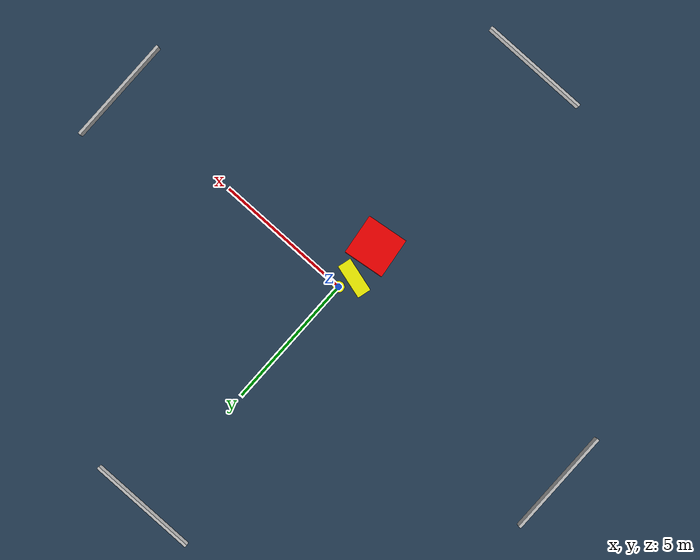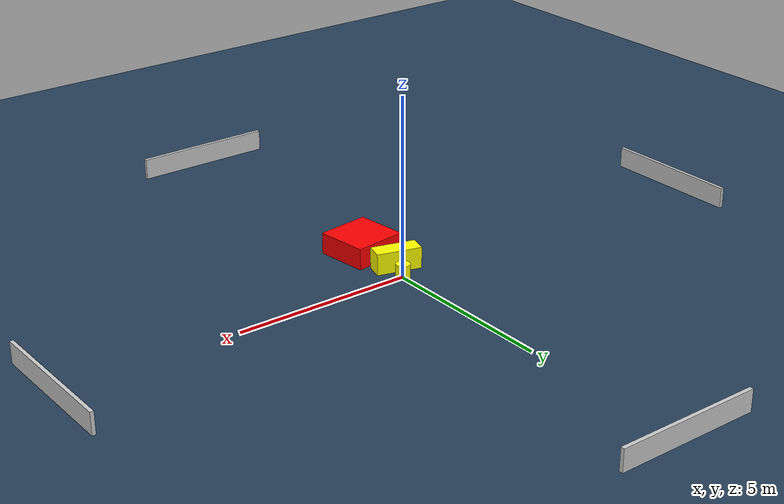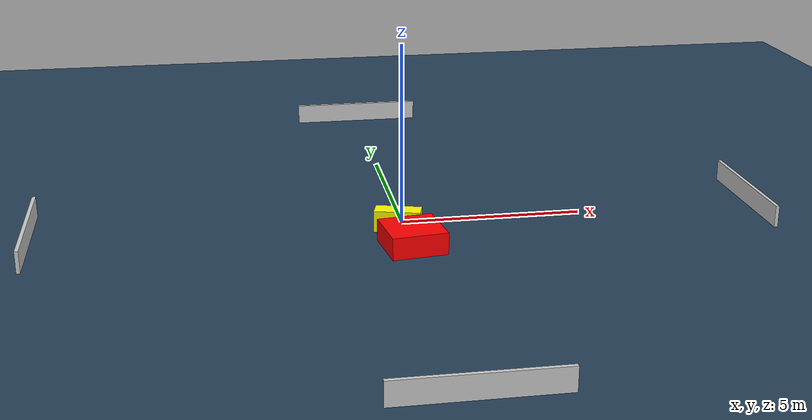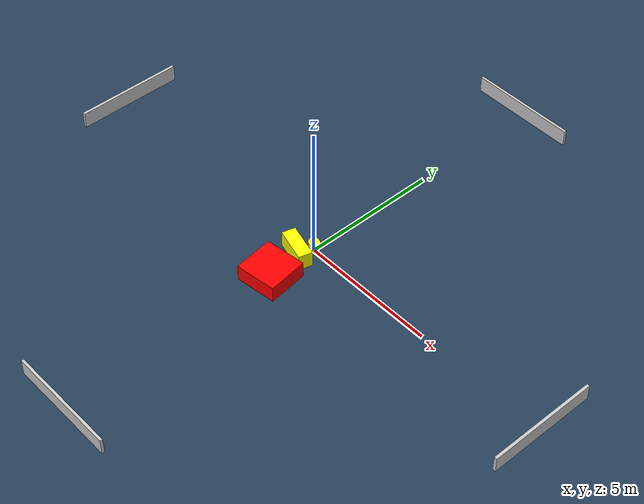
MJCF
<?xml version="1.0" ?>
<mujoco model="generated_environment">
  <option timestep="0.01" integrator="RK4" cone="elliptic"/>
  <default>
    <geom density="1"/>
  </default>
  <asset>
    <texture builtin="gradient" height="3072" name="skybox" rgb1="0.3 0.5 0.7" rgb2="0 0 0" type="skybox" width="512"/>
    <texture builtin="checker" height="300" name="groundplane" rgb1="0.2 0.3 0.4" rgb2="0.1 0.2 0.3" type="2d" width="300"/>
    <material name="groundplane" reflectance="0.2" texrepeat="5 5" texture="groundplane"/>
  </asset>
  <worldbody>
    <light dir="0 0 -1" directional="true" pos="0 0 1.5"/>
    <geom condim="3" friction="0.5 0.005 0.001" material="groundplane" name="floor" pos="0 0 0" size="0 0 0.05" type="plane"/>
    <body name="walls">
      <geom name="wall_1" condim="4" pos="-10.0 0.0 0.3" rgba="0.800000011920929 0.800000011920929 0.800000011920929 1.0" size="0.05 2.0 0.3" type="box"/>
      <geom name="wall_2" condim="4" pos="10.0 0.0 0.3" rgba="0.800000011920929 0.800000011920929 0.800000011920929 1.0" size="0.05 2.0 0.3" type="box"/>
      <geom name="wall_3" condim="4" pos="0.0 -10.0 0.3" rgba="0.800000011920929 0.800000011920929 0.800000011920929 1.0" size="2.0 0.05 0.3" type="box"/>
      <geom name="wall_4" condim="4" pos="0.0 10.0 0.3" rgba="0.800000011920929 0.800000011920929 0.800000011920929 1.0" size="2.0 0.05 0.3" type="box"/>
    </body>
    <body name="robot">
      <joint name="joint_x" type="slide" pos="0 0 0" axis="1 0 0"/>
      <joint name="joint_y" type="slide" pos="0 0 0" axis="0 1 0"/>
      <geom name="robot" type="cylinder" pos="0.0 0.0 0.2" size="0.2 0.2 0.0" mass="5.0" friction="1.0 0.005 0.0001" condim="4" rgba="1.0 1.0 0.0 1.0"/>
    </body>
    <body name="obstacle_1_movable">
      <geom name="obstacle_1_movable" condim="4" pos="-0.20204317498600277 -0.5641175850922507 0.3" euler="0 0 254.59495810482514" friction="0.0 0.005 0.001" rgba="1.0 1.0 0.0 1.0" size="0.2499081036146469 0.6303077184259384 0.3" type="box" mass="0.1"/>
      <joint type="free"/>
    </body>
    <body name="obstacle_2_static">
      <geom name="obstacle_2_static" condim="4" pos="-0.022335052889528282 -1.8514628834591371 0.3" euler="0 0 187.43746621904452" friction="0.0 0.005 0.001" rgba="1.0 0.0 0.0 1.0" size="0.7518166431961075 0.7365060396914636 0.3" type="box"/>
    </body>
  </worldbody>
  <actuator>
    <motor name="actuator_x" joint="joint_x" gear="1" ctrlrange="-1 1"/>
    <motor name="actuator_y" joint="joint_y" gear="1" ctrlrange="-1 1"/>
  </actuator>
</mujoco>
